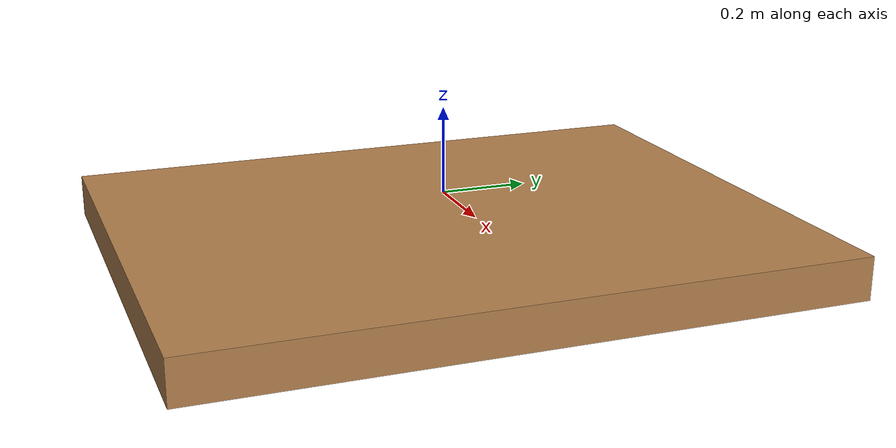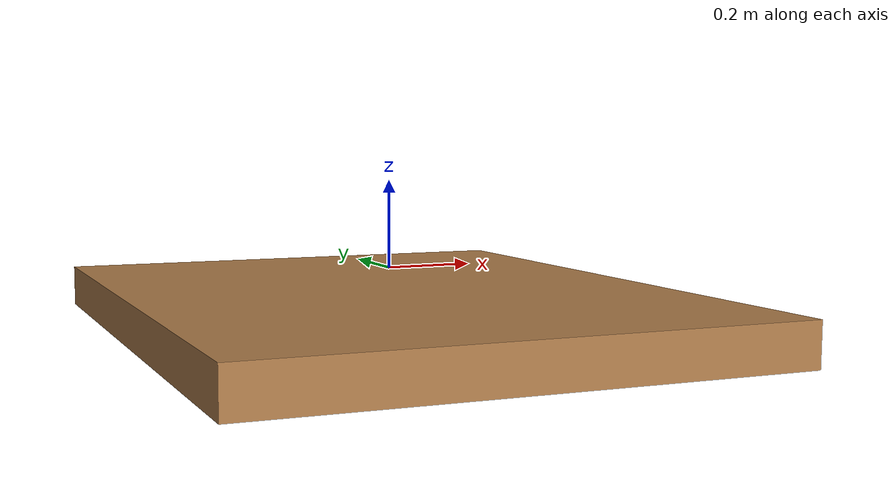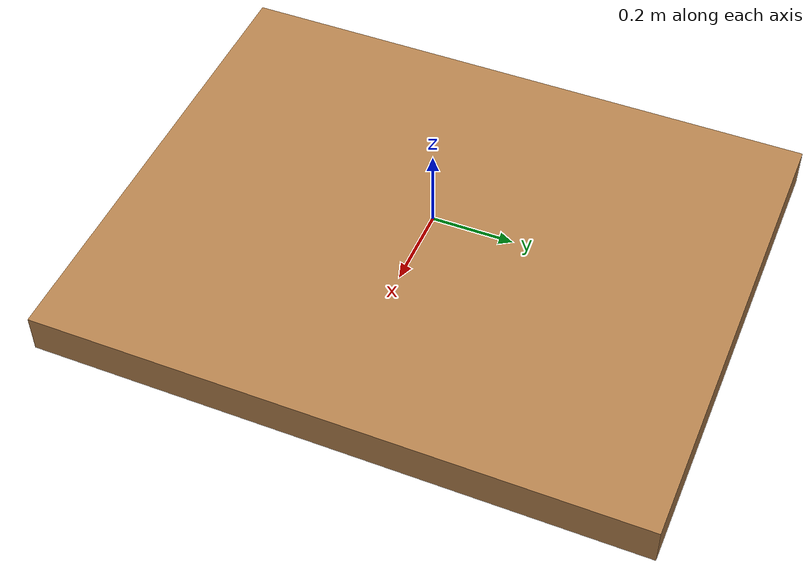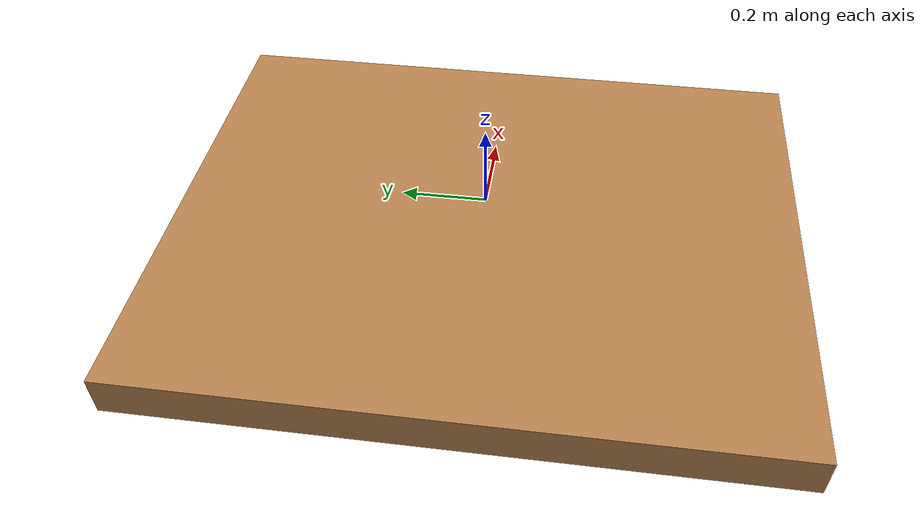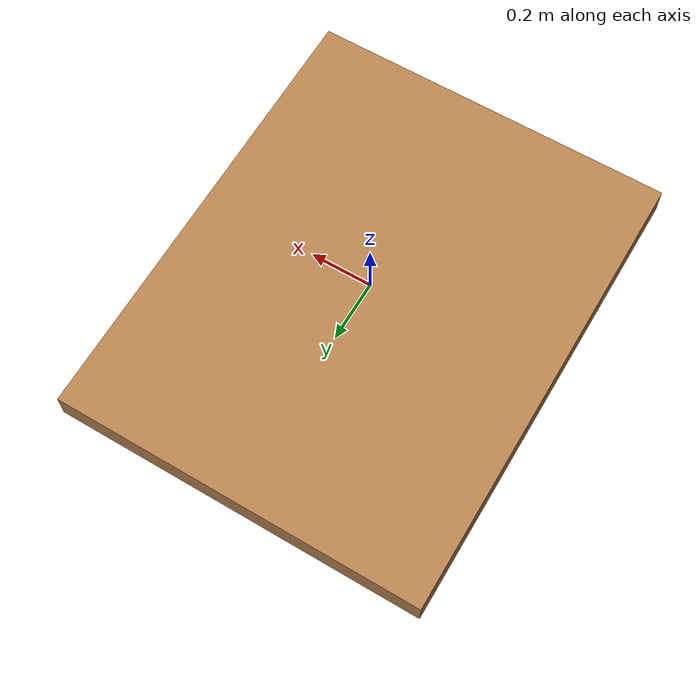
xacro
<?xml version="1.0"?>
<robot name="simple_cube" xmlns:xacro="http://ros.org/wiki/xacro">
  <!-- Definir un cubo simple con textura de madera -->
  <link name="cube_link">
    <visual>
      <origin xyz="0 0 -0.1" rpy="0 0 0"/> <!-- Colocar el cubo 0.5m sobre el suelo -->
      <geometry>
        <box size="1.2 1.5 0.1"/> <!-- Cubo de 1.2x1.5x0.5 metros -->
      </geometry>
      <material name="wood_material">
        <texture filename="package://Teleoperacion-VisionArtificial/src/simulate/urdf/wood_texture.jpg"/> <!-- Aplicar la textura -->
      </material>
    </visual>
    <collision>
      <origin xyz="0 0 0" rpy="0 0 0"/>
      <geometry>
        <box size="1.5 1.5 1.5"/>
      </geometry>
    </collision>
    <inertial>
      <origin xyz="0 0 0" rpy="0 0 0"/>
      <mass value="1.0"/> <!-- Masa del cubo (ajusta según sea necesario) -->
      <inertia ixx="0.01" ixy="0" ixz="0" iyy="0.01" iyz="0" izz="0.01"/>
    </inertial>
  </link>
</robot>
